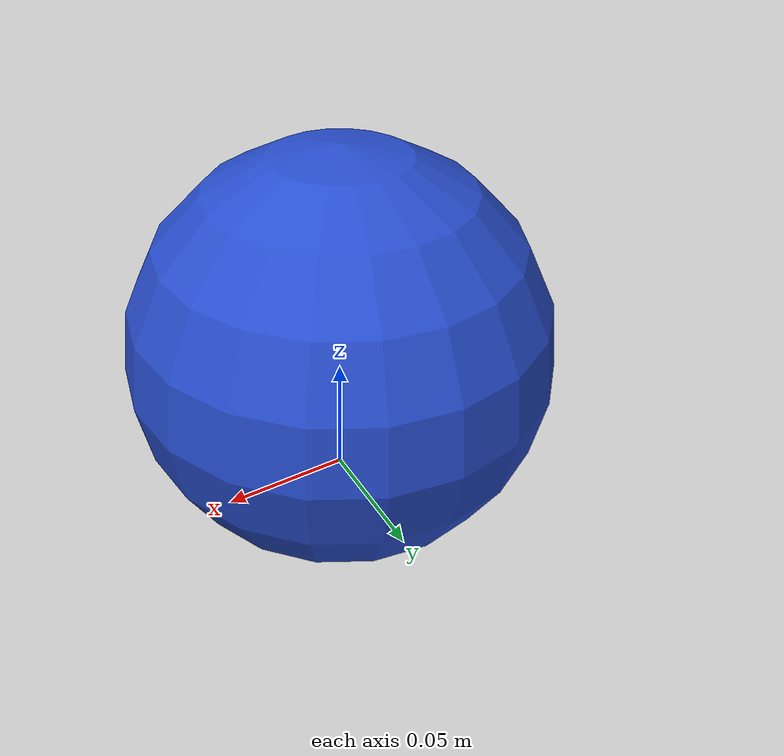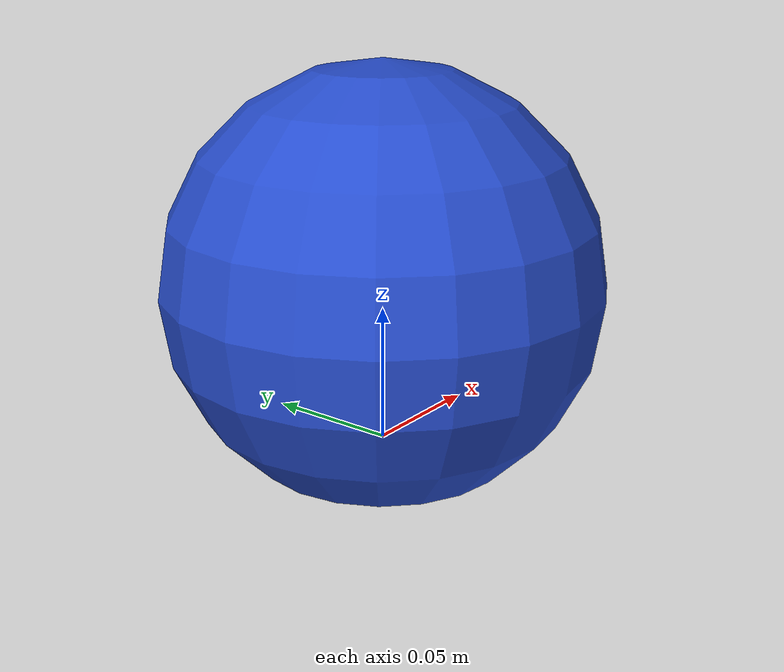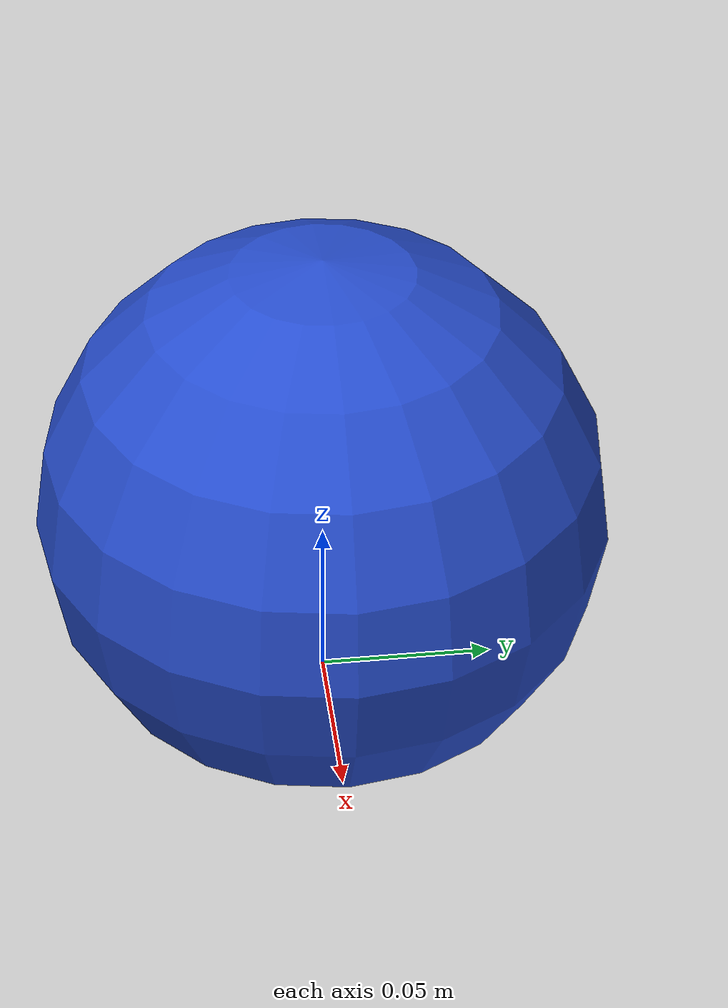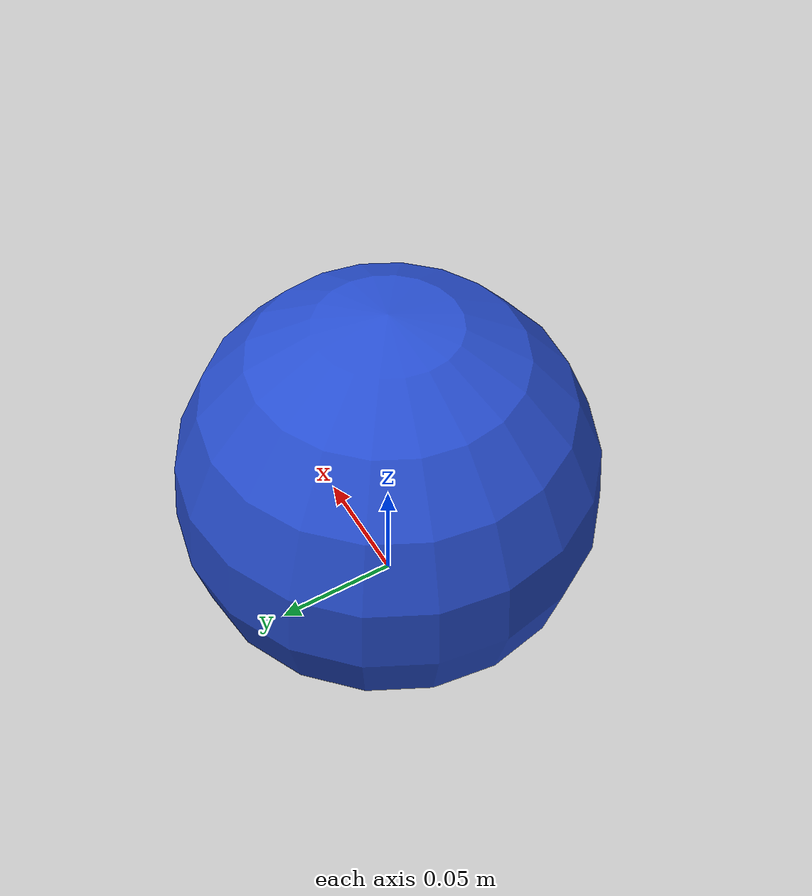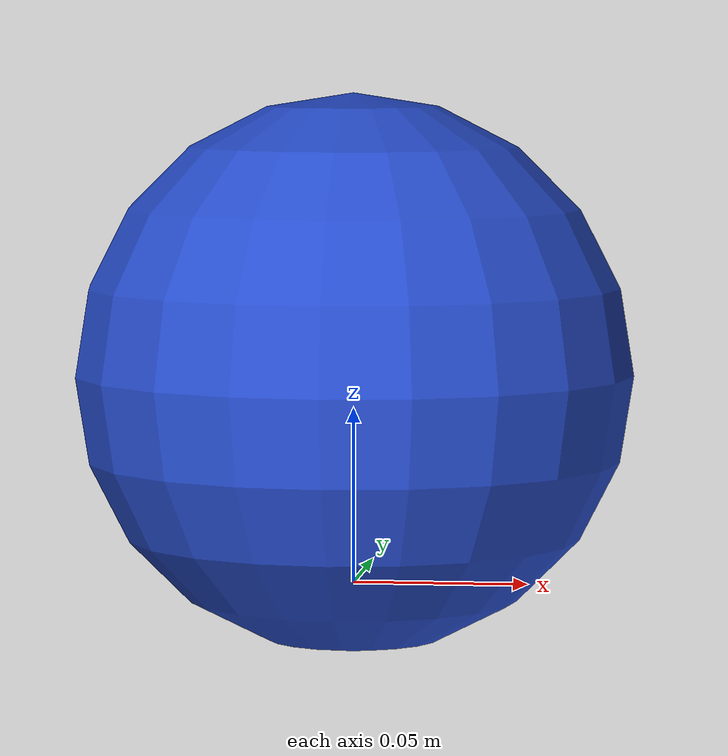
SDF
<?xml version='1.0'?>
<sdf version='1.4'>
  <model name='SDIC_Target'>
    <link name='body'>
      <pose>0 0 0.06 0 0 0</pose>
      <inertial>
        <mass>0.01</mass>
      </inertial>
      <collision name='collsion'>
        <geometry>
          <sphere>
            <radius>0.08</radius>
          </sphere>
        </geometry>
	<surface>
	  <friction>
	    <ode>
	      <mu>0.1</mu>
	      <mu2>0.1</mu2>
	      <slip1>0</slip1>
	      <slip2>0</slip2>
	    </ode>
	  </friction>
	  <contact>
            <ode>
              <max_vel>0.0</max_vel>
            </ode>
          </contact>
	</surface>
      </collision>
      <visual name='visual'>
	<geometry>
          <sphere>
             <radius>0.08</radius>
          </sphere>
        </geometry>
        <material>
          <script>
            <uri>file://media/materials/scripts/gazebo.material</uri>
            <name>Gazebo/Blue</name>
          </script>
        </material>
      </visual>
      <velocity_decay>
        <linear>0</linear>
        <angular>0</angular>
      </velocity_decay>
    </link>
    <plugin name="model_push" filename="libtarget_plugin.so" />
  </model>
</sdf>
